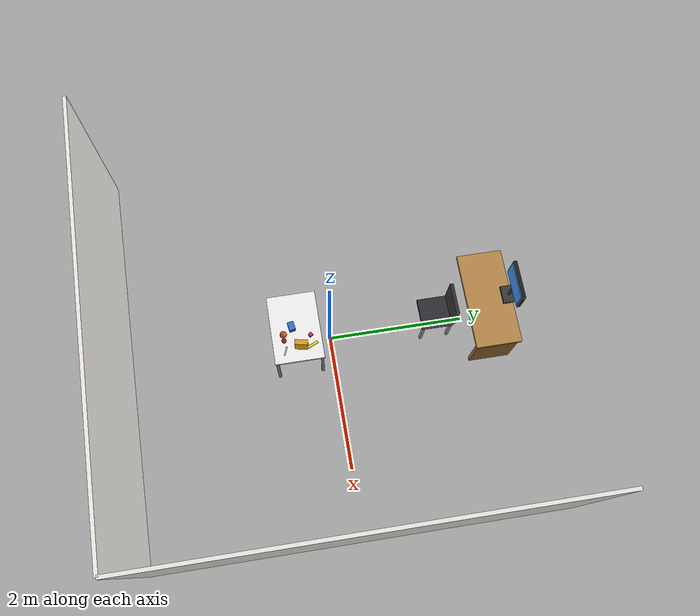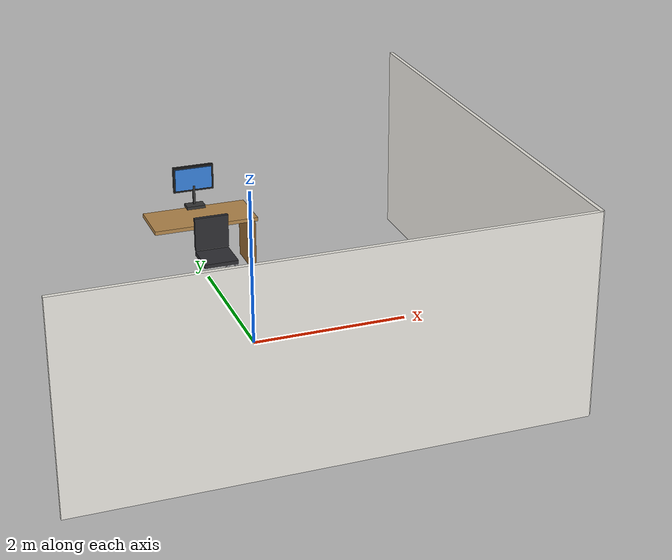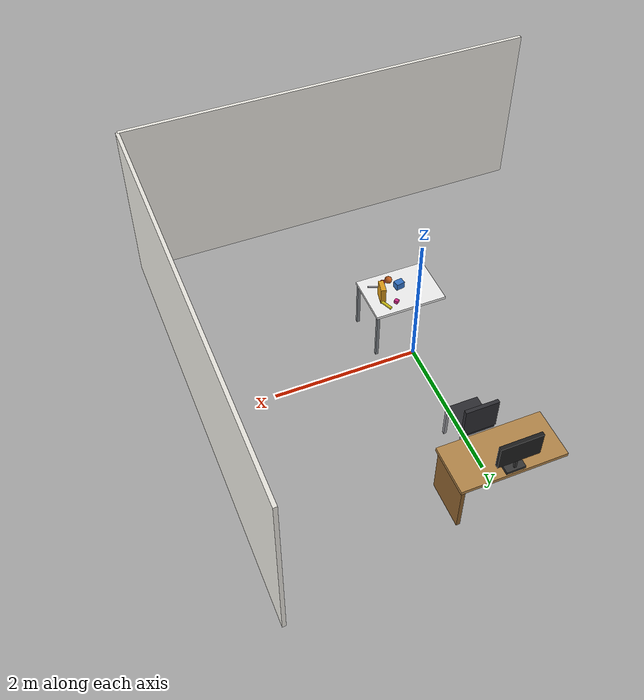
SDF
<sdf version="1.10">
 <world name="bps_room">
  <model name="wall_south">
   <static>true</static>
   <pose>0 -3 1.25 0 0 0</pose>
   <link name="link">
    <collision name="collision">
     <geometry><box><size>6 0.050000000000000003 2.5</size></box></geometry>
    </collision>
    <visual name="visual">
     <geometry><box><size>6 0.050000000000000003 2.5</size></box></geometry>
     <material>
      <ambient>0.949999988 0.939999998 0.910000026 1</ambient>
      <diffuse>0.949999988 0.939999998 0.910000026 1</diffuse>
     </material>
    </visual>
    <inertial>
     <mass>1</mass>
     <inertia><ixx>1</ixx><ixy>0</ixy><ixz>0</ixz><iyy>1</iyy><iyz>0</iyz><izz>1</izz></inertia>
    </inertial>
   </link>
  </model>
  <model name="wall_east">
   <static>true</static>
   <pose>3 0 1.25 0 0 0</pose>
   <link name="link">
    <collision name="collision">
     <geometry><box><size>0.050000000000000003 6 2.5</size></box></geometry>
    </collision>
    <visual name="visual">
     <geometry><box><size>0.050000000000000003 6 2.5</size></box></geometry>
     <material>
      <ambient>0.930000007 0.920000017 0.889999986 1</ambient>
      <diffuse>0.930000007 0.920000017 0.889999986 1</diffuse>
     </material>
    </visual>
    <inertial>
     <mass>1</mass>
     <inertia><ixx>1</ixx><ixy>0</ixy><ixz>0</ixz><iyy>1</iyy><iyz>0</iyz><izz>1</izz></inertia>
    </inertial>
   </link>
  </model>
  <model name="desk">
   <static>true</static>
   <pose>0 2.2999999999999998 0.75 0 0 0</pose>
   <link name="link">
    <collision name="collision">
     <geometry><box><size>1.3999999999999999 0.65000000000000002 0.050000000000000003</size></box></geometry>
    </collision>
    <visual name="visual">
     <geometry><box><size>1.3999999999999999 0.65000000000000002 0.050000000000000003</size></box></geometry>
     <material>
      <ambient>0.720000029 0.540000021 0.300000012 1</ambient>
      <diffuse>0.720000029 0.540000021 0.300000012 1</diffuse>
     </material>
    </visual>
    <inertial>
     <mass>1</mass>
     <inertia><ixx>1</ixx><ixy>0</ixy><ixz>0</ixz><iyy>1</iyy><iyz>0</iyz><izz>1</izz></inertia>
    </inertial>
   </link>
  </model>
  <model name="desk_leg_right">
   <static>true</static>
   <pose>0.65000000000000002 2.2999999999999998 0.375 0 0 0</pose>
   <link name="link">
    <collision name="collision">
     <geometry><box><size>0.050000000000000003 0.59999999999999998 0.75</size></box></geometry>
    </collision>
    <visual name="visual">
     <geometry><box><size>0.050000000000000003 0.59999999999999998 0.75</size></box></geometry>
     <material>
      <ambient>0.550000012 0.379999995 0.180000007 1</ambient>
      <diffuse>0.550000012 0.379999995 0.180000007 1</diffuse>
     </material>
    </visual>
    <inertial>
     <mass>1</mass>
     <inertia><ixx>1</ixx><ixy>0</ixy><ixz>0</ixz><iyy>1</iyy><iyz>0</iyz><izz>1</izz></inertia>
    </inertial>
   </link>
  </model>
  <model name="monitor_base">
   <static>true</static>
   <pose>0 2.5499999999999998 0.81999999999999995 0 0 0</pose>
   <link name="link">
    <collision name="collision">
     <geometry><box><size>0.25 0.14999999999999999 0.040000000000000001</size></box></geometry>
    </collision>
    <visual name="visual">
     <geometry><box><size>0.25 0.14999999999999999 0.040000000000000001</size></box></geometry>
     <material>
      <ambient>0.219999999 0.219999999 0.219999999 1</ambient>
      <diffuse>0.219999999 0.219999999 0.219999999 1</diffuse>
     </material>
    </visual>
    <inertial>
     <mass>1</mass>
     <inertia><ixx>1</ixx><ixy>0</ixy><ixz>0</ixz><iyy>1</iyy><iyz>0</iyz><izz>1</izz></inertia>
    </inertial>
   </link>
  </model>
  <model name="monitor_stand">
   <static>true</static>
   <pose>0 2.5800000000000001 0.96999999999999997 0 0 0</pose>
   <link name="link">
    <collision name="collision">
     <geometry><box><size>0.029999999999999999 0.029999999999999999 0.26000000000000001</size></box></geometry>
    </collision>
    <visual name="visual">
     <geometry><box><size>0.029999999999999999 0.029999999999999999 0.26000000000000001</size></box></geometry>
     <material>
      <ambient>0.219999999 0.219999999 0.219999999 1</ambient>
      <diffuse>0.219999999 0.219999999 0.219999999 1</diffuse>
     </material>
    </visual>
    <inertial>
     <mass>1</mass>
     <inertia><ixx>1</ixx><ixy>0</ixy><ixz>0</ixz><iyy>1</iyy><iyz>0</iyz><izz>1</izz></inertia>
    </inertial>
   </link>
  </model>
  <model name="monitor_screen">
   <static>true</static>
   <pose>0 2.6000000000000001 1.2 0 0 0</pose>
   <link name="link">
    <collision name="collision">
     <geometry><box><size>0.55000000000000004 0.050000000000000003 0.34999999999999998</size></box></geometry>
    </collision>
    <visual name="visual">
     <geometry><box><size>0.55000000000000004 0.050000000000000003 0.34999999999999998</size></box></geometry>
     <material>
      <ambient>0.119999997 0.119999997 0.119999997 1</ambient>
      <diffuse>0.119999997 0.119999997 0.119999997 1</diffuse>
     </material>
    </visual>
    <inertial>
     <mass>1</mass>
     <inertia><ixx>1</ixx><ixy>0</ixy><ixz>0</ixz><iyy>1</iyy><iyz>0</iyz><izz>1</izz></inertia>
    </inertial>
   </link>
  </model>
  <model name="monitor_face">
   <static>true</static>
   <pose>0 2.5699999999999998 1.2 0 0 0</pose>
   <link name="link">
    <visual name="visual">
     <geometry><box><size>0.5 0.01 0.29999999999999999</size></box></geometry>
     <material>
      <ambient>0.219999999 0.519999981 0.879999995 1</ambient>
      <diffuse>0.219999999 0.519999981 0.879999995 1</diffuse>
      <emissive>0.100000001 0.25 0.449999988 1</emissive>
     </material>
    </visual>
    <inertial>
     <mass>1</mass>
     <inertia><ixx>1</ixx><ixy>0</ixy><ixz>0</ixz><iyy>1</iyy><iyz>0</iyz><izz>1</izz></inertia>
    </inertial>
   </link>
  </model>
  <model name="chair_seat">
   <static>true</static>
   <pose>0 1.55 0.47999999999999998 0 0 0</pose>
   <link name="link">
    <collision name="collision">
     <geometry><box><size>0.45000000000000001 0.45000000000000001 0.050000000000000003</size></box></geometry>
    </collision>
    <visual name="visual">
     <geometry><box><size>0.45000000000000001 0.45000000000000001 0.050000000000000003</size></box></geometry>
     <material>
      <ambient>0.180000007 0.180000007 0.200000003 1</ambient>
      <diffuse>0.180000007 0.180000007 0.200000003 1</diffuse>
     </material>
    </visual>
    <inertial>
     <mass>1</mass>
     <inertia><ixx>1</ixx><ixy>0</ixy><ixz>0</ixz><iyy>1</iyy><iyz>0</iyz><izz>1</izz></inertia>
    </inertial>
   </link>
  </model>
  <model name="chair_back">
   <static>true</static>
   <pose>0 1.77 0.75 0 0 0</pose>
   <link name="link">
    <collision name="collision">
     <geometry><box><size>0.45000000000000001 0.050000000000000003 0.45000000000000001</size></box></geometry>
    </collision>
    <visual name="visual">
     <geometry><box><size>0.45000000000000001 0.050000000000000003 0.45000000000000001</size></box></geometry>
     <material>
      <ambient>0.180000007 0.180000007 0.200000003 1</ambient>
      <diffuse>0.180000007 0.180000007 0.200000003 1</diffuse>
     </material>
    </visual>
    <inertial>
     <mass>1</mass>
     <inertia><ixx>1</ixx><ixy>0</ixy><ixz>0</ixz><iyy>1</iyy><iyz>0</iyz><izz>1</izz></inertia>
    </inertial>
   </link>
  </model>
  <model name="chair_leg_fr">
   <static>true</static>
   <pose>0.20000000000000001 1.3500000000000001 0.23999999999999999 0 0 0</pose>
   <link name="link">
    <collision name="collision">
     <geometry><box><size>0.040000000000000001 0.040000000000000001 0.47999999999999998</size></box></geometry>
    </collision>
    <visual name="visual">
     <geometry><box><size>0.040000000000000001 0.040000000000000001 0.47999999999999998</size></box></geometry>
     <material>
      <ambient>0.600000024 0.600000024 0.620000005 1</ambient>
      <diffuse>0.600000024 0.600000024 0.620000005 1</diffuse>
     </material>
    </visual>
    <inertial>
     <mass>1</mass>
     <inertia><ixx>1</ixx><ixy>0</ixy><ixz>0</ixz><iyy>1</iyy><iyz>0</iyz><izz>1</izz></inertia>
    </inertial>
   </link>
  </model>
  <model name="chair_leg_br">
   <static>true</static>
   <pose>0.20000000000000001 1.75 0.23999999999999999 0 0 0</pose>
   <link name="link">
    <collision name="collision">
     <geometry><box><size>0.040000000000000001 0.040000000000000001 0.47999999999999998</size></box></geometry>
    </collision>
    <visual name="visual">
     <geometry><box><size>0.040000000000000001 0.040000000000000001 0.47999999999999998</size></box></geometry>
     <material>
      <ambient>0.600000024 0.600000024 0.620000005 1</ambient>
      <diffuse>0.600000024 0.600000024 0.620000005 1</diffuse>
     </material>
    </visual>
    <inertial>
     <mass>1</mass>
     <inertia><ixx>1</ixx><ixy>0</ixy><ixz>0</ixz><iyy>1</iyy><iyz>0</iyz><izz>1</izz></inertia>
    </inertial>
   </link>
  </model>
  <model name="experiment_table">
   <static>true</static>
   <pose>0 -0.5 0.75 0 0 0</pose>
   <link name="link">
    <collision name="collision">
     <geometry><box><size>1 0.69999999999999996 0.040000000000000001</size></box></geometry>
    </collision>
    <visual name="visual">
     <geometry><box><size>1 0.69999999999999996 0.040000000000000001</size></box></geometry>
     <material>
      <ambient>0.959999979 0.959999979 0.959999979 1</ambient>
      <diffuse>0.959999979 0.959999979 0.959999979 1</diffuse>
     </material>
    </visual>
    <inertial>
     <mass>1</mass>
     <inertia><ixx>1</ixx><ixy>0</ixy><ixz>0</ixz><iyy>1</iyy><iyz>0</iyz><izz>1</izz></inertia>
    </inertial>
   </link>
  </model>
  <model name="table_leg_fr">
   <static>true</static>
   <pose>0.46999999999999997 -0.81999999999999995 0.375 0 0 0</pose>
   <link name="link">
    <collision name="collision">
     <geometry><box><size>0.040000000000000001 0.040000000000000001 0.75</size></box></geometry>
    </collision>
    <visual name="visual">
     <geometry><box><size>0.040000000000000001 0.040000000000000001 0.75</size></box></geometry>
     <material>
      <ambient>0.5 0.519999981 0.540000021 1</ambient>
      <diffuse>0.5 0.519999981 0.540000021 1</diffuse>
     </material>
    </visual>
    <inertial>
     <mass>1</mass>
     <inertia><ixx>1</ixx><ixy>0</ixy><ixz>0</ixz><iyy>1</iyy><iyz>0</iyz><izz>1</izz></inertia>
    </inertial>
   </link>
  </model>
  <model name="table_leg_br">
   <static>true</static>
   <pose>0.46999999999999997 -0.17999999999999999 0.375 0 0 0</pose>
   <link name="link">
    <collision name="collision">
     <geometry><box><size>0.040000000000000001 0.040000000000000001 0.75</size></box></geometry>
    </collision>
    <visual name="visual">
     <geometry><box><size>0.040000000000000001 0.040000000000000001 0.75</size></box></geometry>
     <material>
      <ambient>0.5 0.519999981 0.540000021 1</ambient>
      <diffuse>0.5 0.519999981 0.540000021 1</diffuse>
     </material>
    </visual>
    <inertial>
     <mass>1</mass>
     <inertia><ixx>1</ixx><ixy>0</ixy><ixz>0</ixz><iyy>1</iyy><iyz>0</iyz><izz>1</izz></inertia>
    </inertial>
   </link>
  </model>
  <model name="obj_bowl">
   <static>true</static>
   <pose>0.10000000000000001 -0.68000000000000005 0.81999999999999995 0 0 0</pose>
   <link name="link">
    <collision name="collision">
     <geometry><sphere><radius>0.050000000000000003</radius></sphere></geometry>
    </collision>
    <visual name="visual">
     <geometry><sphere><radius>0.050000000000000003</radius></sphere></geometry>
     <material>
      <ambient>0.75 0.349999994 0.100000001 1</ambient>
      <diffuse>0.75 0.349999994 0.100000001 1</diffuse>
      <specular>0.300000012 0.300000012 0.300000012 1</specular>
     </material>
     <plugin name="gz::sim::systems::Label" filename="gz-sim-label-system"><label>3</label></plugin>
    </visual>
    <inertial>
     <mass>1</mass>
     <inertia><ixx>1</ixx><ixy>0</ixy><ixz>0</ixz><iyy>1</iyy><iyz>0</iyz><izz>1</izz></inertia>
    </inertial>
   </link>
  </model>
  <model name="obj_apple">
   <static>true</static>
   <pose>0.185 -0.68000000000000005 0.80500000000000005 0 0 0</pose>
   <link name="link">
    <collision name="collision">
     <geometry><sphere><radius>0.035000000000000003</radius></sphere></geometry>
    </collision>
    <visual name="visual">
     <geometry><sphere><radius>0.035000000000000003</radius></sphere></geometry>
     <material>
      <ambient>0.800000012 0.0799999982 0.0799999982 1</ambient>
      <diffuse>0.800000012 0.0799999982 0.0799999982 1</diffuse>
      <specular>0.400000006 0.400000006 0.400000006 1</specular>
     </material>
     <plugin name="gz::sim::systems::Label" filename="gz-sim-label-system"><label>4</label></plugin>
    </visual>
    <inertial>
     <mass>1</mass>
     <inertia><ixx>1</ixx><ixy>0</ixy><ixz>0</ixz><iyy>1</iyy><iyz>0</iyz><izz>1</izz></inertia>
    </inertial>
   </link>
  </model>
  <model name="obj_spoon">
   <static>true</static>
   <pose>0.33000000000000002 -0.68000000000000005 0.77500000000000002 0 0 1.2000000000000002</pose>
   <link name="link">
    <collision name="collision"><geometry><box><size>0.02 0.13 0.01</size></box></geometry></collision>
    <visual name="visual">
     <geometry><box><size>0.02 0.13 0.01</size></box></geometry>
     <material>
      <ambient>0.720000029 0.720000029 0.75 1</ambient>
      <diffuse>0.720000029 0.720000029 0.75 1</diffuse>
      <specular>0.600000024 0.600000024 0.600000024 1</specular>
     </material>
     <plugin name="gz::sim::systems::Label" filename="gz-sim-label-system"><label>5</label></plugin>
    </visual>
    <inertial>
     <mass>1</mass>
     <inertia><ixx>1</ixx><ixy>0</ixy><ixz>0</ixz><iyy>1</iyy><iyz>0</iyz><izz>1</izz></inertia>
    </inertial>
   </link>
  </model>
  <model name="obj_tissue_box">
   <static>true</static>
   <pose>0 -0.55000000000000004 0.81999999999999995 0 0 0.14999999999999988</pose>
   <link name="link">
    <collision name="collision">
     <geometry><box><size>0.12 0.089999999999999997 0.10000000000000001</size></box></geometry>
    </collision>
    <visual name="visual">
     <geometry><box><size>0.12 0.089999999999999997 0.10000000000000001</size></box></geometry>
     <material>
      <ambient>0.200000003 0.449999988 0.779999971 1</ambient>
      <diffuse>0.200000003 0.449999988 0.779999971 1</diffuse>
      <specular>0.200000003 0.200000003 0.200000003 1</specular>
     </material>
     <plugin name="gz::sim::systems::Label" filename="gz-sim-label-system"><label>7</label></plugin>
    </visual>
    <inertial>
     <mass>1</mass>
     <inertia><ixx>1</ixx><ixy>0</ixy><ixz>0</ixz><iyy>1</iyy><iyz>0</iyz><izz>1</izz></inertia>
    </inertial>
   </link>
  </model>
  <model name="obj_cereal_box">
   <static>true</static>
   <pose>0.29999999999999999 -0.45000000000000001 0.89000000000000001 0 0 -0.20000000000000009</pose>
   <link name="link">
    <collision name="collision">
     <geometry><box><size>0.070000000000000007 0.17999999999999999 0.23999999999999999</size></box></geometry>
    </collision>
    <visual name="visual">
     <geometry><box><size>0.070000000000000007 0.17999999999999999 0.23999999999999999</size></box></geometry>
     <material>
      <ambient>0.879999995 0.620000005 0.100000001 1</ambient>
      <diffuse>0.879999995 0.620000005 0.100000001 1</diffuse>
      <specular>0.200000003 0.200000003 0.200000003 1</specular>
     </material>
     <plugin name="gz::sim::systems::Label" filename="gz-sim-label-system"><label>8</label></plugin>
    </visual>
    <inertial>
     <mass>1</mass>
     <inertia><ixx>1</ixx><ixy>0</ixy><ixz>0</ixz><iyy>1</iyy><iyz>0</iyz><izz>1</izz></inertia>
    </inertial>
   </link>
  </model>
  <model name="obj_toy_block">
   <static>true</static>
   <pose>0.14999999999999999 -0.29999999999999999 0.79500000000000004 0 0 0.59999999999999998</pose>
   <link name="link">
    <collision name="collision">
     <geometry><box><size>0.050000000000000003 0.050000000000000003 0.050000000000000003</size></box></geometry>
    </collision>
    <visual name="visual">
     <geometry><box><size>0.050000000000000003 0.050000000000000003 0.050000000000000003</size></box></geometry>
     <material>
      <ambient>0.850000024 0.150000006 0.550000012 1</ambient>
      <diffuse>0.850000024 0.150000006 0.550000012 1</diffuse>
      <specular>0.400000006 0.400000006 0.400000006 1</specular>
     </material>
     <plugin name="gz::sim::systems::Label" filename="gz-sim-label-system"><label>11</label></plugin>
    </visual>
    <inertial>
     <mass>1</mass>
     <inertia><ixx>1</ixx><ixy>0</ixy><ixz>0</ixz><iyy>1</iyy><iyz>0</iyz><izz>1</izz></inertia>
    </inertial>
   </link>
  </model>
  <model name="obj_banana">
   <static>true</static>
   <pose>0.29999999999999999 -0.29999999999999999 0.79000000000000004 1.5708 2.7755575615628914e-17 0.40000000000000008</pose>
   <link name="link">
    <collision name="collision">
     <geometry><cylinder><radius>0.02</radius><length>0.17999999999999999</length></cylinder></geometry>
    </collision>
    <visual name="visual">
     <geometry><cylinder><radius>0.02</radius><length>0.17999999999999999</length></cylinder></geometry>
     <material>
      <ambient>0.920000017 0.850000024 0.100000001 1</ambient>
      <diffuse>0.920000017 0.850000024 0.100000001 1</diffuse>
      <specular>0.300000012 0.300000012 0.300000012 1</specular>
     </material>
     <plugin name="gz::sim::systems::Label" filename="gz-sim-label-system"><label>12</label></plugin>
    </visual>
    <inertial>
     <mass>1</mass>
     <inertia><ixx>1</ixx><ixy>0</ixy><ixz>0</ixz><iyy>1</iyy><iyz>0</iyz><izz>1</izz></inertia>
    </inertial>
   </link>
  </model>
 </world>
</sdf>
